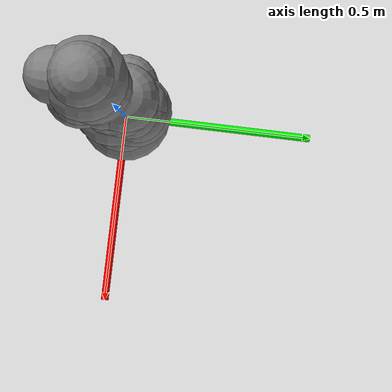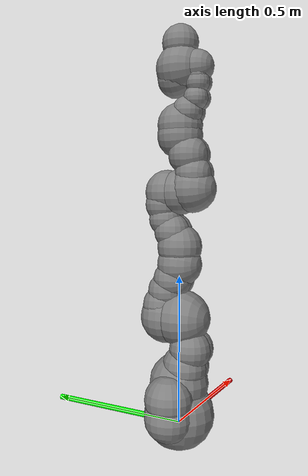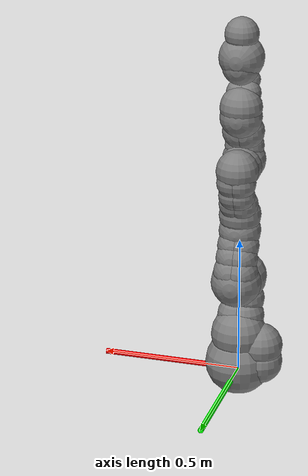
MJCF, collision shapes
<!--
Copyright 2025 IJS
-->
<mujoco model="iiwa14">
  <compiler angle="radian" meshdir="assets/"/>

  <option integrator="implicitfast"/>

  <default>
    <default class="robot">
      <material specular="0.5" shininess="0.25"/>
      <joint axis="0 0 1"/>
      <general gaintype="fixed" biastype="affine" gainprm="2000" biasprm="0 -2000 -200"/>
      <default class="joint1">
        <joint range="-2.96706 2.96706"/>
        <general ctrlrange="-2.96706 2.96706"/>
        <default class="joint2">
          <joint range="-2.0944 2.0944"/>
          <general ctrlrange="-2.0944 2.0944"/>
        </default>
      </default>
      <default class="joint3">
        <joint range="-3.05433 3.05433"/>
        <general ctrlrange="-3.05433 3.05433"/>
      </default>
      <default class="visual">
        <geom type="mesh" contype="0" conaffinity="0" group="2" material="gray"/>
      </default>
      <default class="collision">
        <geom group="3"/>
      </default>
      <site size="0.001" rgba="1 0 0 1" group="4"/>
    </default>
  </default>

  <asset>
    <material class="robot" name="gray" rgba="0.4 0.4 0.4 1"/>
    <material class="robot" name="light_gray" rgba="0.6 0.6 0.6 1"/>
    <material class="robot" name="black" rgba="0 0 0 1"/>
    <material class="robot" name="orange" rgba="1 0.423529 0.0392157 1"/>

    <mesh file="iiwa14/link_0.obj"/>
    <mesh file="iiwa14/link_1.obj"/>
    <mesh file="iiwa14/link_2_orange.obj"/>
    <mesh file="iiwa14/link_2_grey.obj"/>
    <mesh file="iiwa14/link_3.obj"/>
    <mesh file="iiwa14/band.obj"/>
    <mesh file="iiwa14/kuka.obj"/>
    <mesh file="iiwa14/link_4_orange.obj"/>
    <mesh file="iiwa14/link_4_grey.obj"/>
    <mesh file="iiwa14/link_5.obj"/>
    <mesh file="iiwa14/link_6_orange.obj"/>
    <mesh file="iiwa14/link_6_grey.obj"/>
    <mesh file="iiwa14/link_7.obj"/>
  </asset>

  <worldbody>
    <body name="base" childclass="robot">
      <site name="x" group="1" pos="0.25 0 0" quat="0.707107 0 0.707107 0" size="0.01 0.25" type="cylinder" rgba="1 0 0 1"/>
      <site name="y" group="1" pos="0 0.25 0" quat="0.707107 0.707107 0 0" size="0.01 0.25" type="cylinder" rgba="0 1 0 1"/>
      <site name="z" group="1" pos="0 0 0.25" size="0.01 0.25" type="cylinder" rgba="0 0 1 1"/>
      <body name="link0" childclass="robot">
        <inertial mass="5" pos="-0.1 0 0.07" diaginertia="0.05 0.06 0.03"/>
        <geom class="visual" mesh="link_0"/>
        <geom class="collision" size="0.12" pos="0 0 0.03"/>
        <geom class="collision" size="0.08" pos="-0.08 0 0.103"/>
        <geom class="collision" size="0.08" pos="-0.08 0 0.04"/>
        <geom class="collision" size="0.1" pos="0 0 0.14"/>
        <body name="link1" pos="0 0 0.1575">
          <inertial mass="5.76" pos="0 -0.03 0.12" diaginertia="0.0333 0.033 0.0123"/>
          <joint name="joint1" class="joint1"/>
          <geom class="visual" mesh="link_1"/>
          <geom class="collision" size="0.08" pos="0 0 -0.0005"/>
          <geom class="collision" size="0.075" pos="0.01 -0.025 0.0425"/>
          <geom class="collision" size="0.075" pos="-0.01 -0.025 0.0425"/>
          <geom class="collision" size="0.07" pos="0.01 -0.045 0.1025"/>
          <geom class="collision" size="0.07" pos="-0.01 -0.045 0.1025"/>
          <body name="link2" pos="0 0 0.2025" quat="0 0 1 1">
            <inertial mass="6.35" pos="0.0003 0.059 0.042" diaginertia="0.0305 0.0304 0.011" quat="0 0 1 1"/>
            <joint name="joint2" class="joint2"/>
            <geom class="visual" material="orange" mesh="link_2_orange"/>
            <geom class="visual" mesh="link_2_grey"/>
            <geom class="collision" size="0.095" pos="0 0 -0.01"/>
            <geom class="collision" size="0.09" pos="0 0 0.045"/>
            <geom class="collision" size="0.07" pos="-0.01 0.04 0.054"/>
            <geom class="collision" size="0.065" pos="-0.01 0.09 0.04"/>
            <geom class="collision" size="0.065" pos="-0.01 0.13 0.02"/>
            <geom class="collision" size="0.07" pos="0.01 0.04 0.054"/>
            <geom class="collision" size="0.065" pos="0.01 0.09 0.04"/>
            <geom class="collision" size="0.065" pos="0.01 0.13 0.02"/>
            <geom class="collision" size="0.075" pos="0 0.18 0"/>
            <body name="link3" pos="0 0.2045 0" quat="0 0 1 1">
              <inertial mass="3.5" pos="0 0.03 0.13" diaginertia="0.025 0.0238 0.0076"/>
              <joint name="joint3" class="joint1"/>
              <geom class="visual" mesh="link_3"/>
              <geom class="visual" material="light_gray" mesh="band"/>
              <geom class="visual" material="black" mesh="kuka"/>
              <geom class="collision" size="0.075" pos="0 0 0.0355"/>
              <geom class="collision" size="0.06" pos="0.01 0.023 0.0855"/>
              <geom class="collision" size="0.055" pos="0.01 0.048 0.1255"/>
              <geom class="collision" size="0.06" pos="0.01 0.056 0.1755"/>
              <geom class="collision" size="0.06" pos="-0.01 0.023 0.0855"/>
              <geom class="collision" size="0.055" pos="-0.01 0.048 0.1255"/>
              <geom class="collision" size="0.06" pos="-0.01 0.056 0.1755"/>
              <geom class="collision" size="0.075" pos="0 0.045 0.2155"/>
              <geom class="collision" size="0.075" pos="0 0 0.2155"/>
              <body name="link4" pos="0 0 0.2155" quat="1 1 0 0">
                <inertial mass="3.5" pos="0 0.067 0.034" diaginertia="0.017 0.0164 0.006" quat="1 1 0 0"/>
                <joint name="joint4" class="joint2"/>
                <geom class="visual" material="orange" mesh="link_4_orange"/>
                <geom class="visual" mesh="link_4_grey"/>
                <geom class="collision" size="0.078" pos="0 0.01 0.046"/>
                <geom class="collision" size="0.06" pos="0.01 0.06 0.052"/>
                <geom class="collision" size="0.065" pos="0.01 0.12 0.034"/>
                <geom class="collision" size="0.06" pos="-0.01 0.06 0.052"/>
                <geom class="collision" size="0.065" pos="-0.01 0.12 0.034"/>
                <geom class="collision" size="0.075" pos="0 0.184 0"/>
                <body name="link5" pos="0 0.1845 0" quat="0 0 1 1">
                  <inertial mass="3.5" pos="0.0001 0.021 0.076" diaginertia="0.01 0.0087 0.00449"/>
                  <joint name="joint5" class="joint1"/>
                  <geom class="visual" mesh="link_5"/>
                  <geom class="visual" material="light_gray" mesh="band"/>
                  <geom class="visual" material="black" mesh="kuka"/>
                  <geom class="collision" size="0.075" pos="0 0 0.0335"/>
                  <geom class="collision" size="0.05" pos="-0.012 0.031 0.0755"/>
                  <geom class="collision" size="0.05" pos="0.012 0.031 0.0755"/>
                  <geom class="collision" size="0.04" pos="-0.012 0.06 0.1155"/>
                  <geom class="collision" size="0.04" pos="0.012 0.06 0.1155"/>
                  <geom class="collision" size="0.04" pos="-0.01 0.065 0.1655"/>
                  <geom class="collision" size="0.04" pos="0.01 0.065 0.1655"/>
                  <geom class="collision" size="0.035" pos="-0.012 0.065 0.1855"/>
                  <geom class="collision" size="0.035" pos="0.012 0.065 0.1855"/>
                  <body name="link6" pos="0 0 0.2155" quat="1 1 0 0">
                    <inertial mass="1.8" pos="0 0.0006 0.0004" diaginertia="0.0049 0.0047 0.0036" quat="1 1 0 0"/>
                    <joint name="joint6" class="joint2"/>
                    <geom class="visual" material="orange" mesh="link_6_orange"/>
                    <geom class="visual" mesh="link_6_grey"/>
                    <geom class="collision" size="0.055" pos="0 0 -0.059"/>
                    <geom class="collision" size="0.065" pos="0 -0.03 0.011"/>
                    <geom class="collision" size="0.08"/>
                    <body name="link7" pos="0 0.081 0" quat="0 0 1 1">
                      <inertial mass="1.2" pos="0 0 0.02" diaginertia="0.001 0.001 0.001"/>
                      <joint name="joint7" class="joint3"/>
                      <geom class="visual" mesh="link_7"/>
                      <geom class="collision" size="0.06" pos="0 0 0.001"/>
                      <body name="flange" pos="0 0 0.045" axisangle="1 0 0 0">
                      <inertial pos="0 0 0.045" quat="0.707107 0 -0.707107 0" mass="0" diaginertia="0 0 0" />
                        <site group="3" type="cylinder" pos="0.125 0 0" quat="0.70711 0 0.70711 0" size="0.005 0.125" rgba="1 0 0 1"/>
                        <site group="3" type="cylinder" pos="0 0.125 0" quat="0.70711 0.70711 0 0" size="0.005 0.125" rgba="0 1 0 1"/>
                        <site group="3" type="cylinder" pos="0 0 0.125" quat="1 0 0 0" size="0.005 0.125" rgba="0 0 1 1"/>
                        <site name="flange" pos="0 0 0"/>
                        <site name="TCP" pos="0 0 0"/>
                      </body>
                    </body>
                  </body>
                </body>
              </body>
            </body>
          </body>
        </body>
      </body>
    </body>
  </worldbody>

  <contact>
    <exclude body1="link0" body2="link1"/>
    <exclude body1="link0" body2="link2"/>
    <exclude body1="link0" body2="link3"/>
    <exclude body1="link1" body2="link3"/>
    <exclude body1="link3" body2="link5"/>
    <exclude body1="link4" body2="link7"/>
    <exclude body1="link5" body2="link7"/>
  </contact>

  <actuator>
    <general name="actuator1" joint="joint1" class="joint1"/>
    <general name="actuator2" joint="joint2" class="joint2"/>
    <general name="actuator3" joint="joint3" class="joint1"/>
    <general name="actuator4" joint="joint4" class="joint2"/>
    <general name="actuator5" joint="joint5" class="joint1"/>
    <general name="actuator6" joint="joint6" class="joint2"/>
    <general name="actuator7" joint="joint7" class="joint3"/>
  </actuator>

  <sensor>
    <framepos name="pos" objtype="site" objname="TCP" />
    <framequat name="ori" objtype="site" objname="TCP" />
    <framelinvel name="v" objtype="site" objname="TCP" />
    <frameangvel name="w" objtype="site" objname="TCP" />
    <force name="force" site="TCP" noise="0.5" />
    <torque name="torque" site="TCP" noise="0.5" />
    <jointpos name="pos_joint1" joint="joint1" />
    <jointpos name="pos_joint2" joint="joint2" />
    <jointpos name="pos_joint3" joint="joint3" />
    <jointpos name="pos_joint4" joint="joint4" />
    <jointpos name="pos_joint5" joint="joint5" />
    <jointpos name="pos_joint6" joint="joint6" />
    <jointpos name="pos_joint7" joint="joint7" />
    <jointvel name="vel_joint1" joint="joint1" />
    <jointvel name="vel_joint2" joint="joint2" />
    <jointvel name="vel_joint3" joint="joint3" />
    <jointvel name="vel_joint4" joint="joint4" />
    <jointvel name="vel_joint5" joint="joint5" />
    <jointvel name="vel_joint6" joint="joint6" />
    <jointvel name="vel_joint7" joint="joint7" />
  </sensor>

  <keyframe>
    <key name="home" qpos="0 0.785398 0 -1.5708 0 0 0" ctrl="0 0.785398 0 -1.5708 0 0 0"/>
  </keyframe>
</mujoco>
